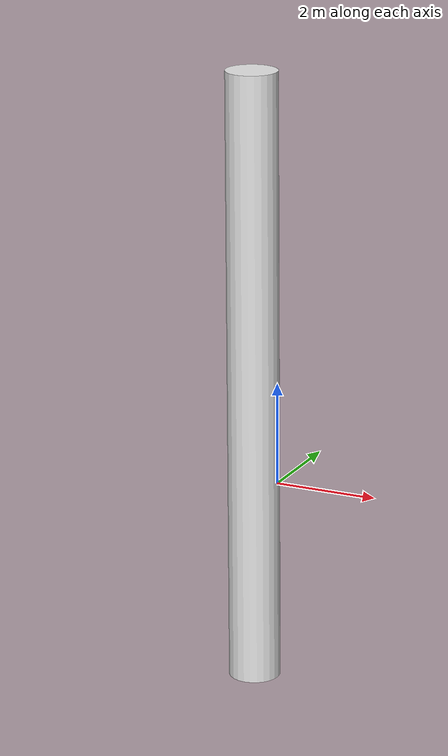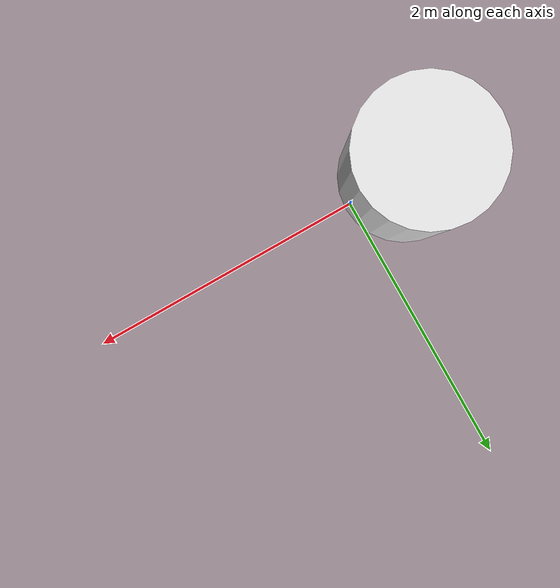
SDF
<?xml version="1.0"?>
<sdf version="1.7">
  <world name="cylinder_4m_bright">
    <physics name="1ms" type="ignored">
      <max_step_size>0.001</max_step_size>
      <real_time_factor>1.0</real_time_factor>
    </physics>
    <plugin filename="gz-sim-physics-system" name="gz::sim::systems::Physics"/>
    <plugin filename="gz-sim-sensors-system" name="gz::sim::systems::Sensors">
      <render_engine>ogre2</render_engine>
    </plugin>
    <plugin filename="gz-sim-user-commands-system" name="gz::sim::systems::UserCommands"/>
    <plugin filename="gz-sim-scene-broadcaster-system" name="gz::sim::systems::SceneBroadcaster"/>
    <plugin filename="multibeam_sonar_system" name="custom::MultibeamSonarSystem"/>
    <scene>
      <ambient>0.5 0.5 0.5 1</ambient>
      <background>0.05 0.05 0.05 1</background>
    </scene>
    <model name="target">
      <static>true</static>
      <pose>-0.500000 0 2 0 0 0</pose>
      <link name="target_link">
        <collision name="target_collision">
          <geometry><cylinder><radius>0.5</radius><length>12</length></cylinder></geometry>
        </collision>
        <visual name="target_visual">
          <geometry><cylinder><radius>0.5</radius><length>12</length></cylinder></geometry>
          <material>
            <ambient>0.9 0.9 0.9 1</ambient>
            <diffuse>0.9 0.9 0.9 1</diffuse>
          </material>
        </visual>
      </link>
    </model>
  </world>
</sdf>
